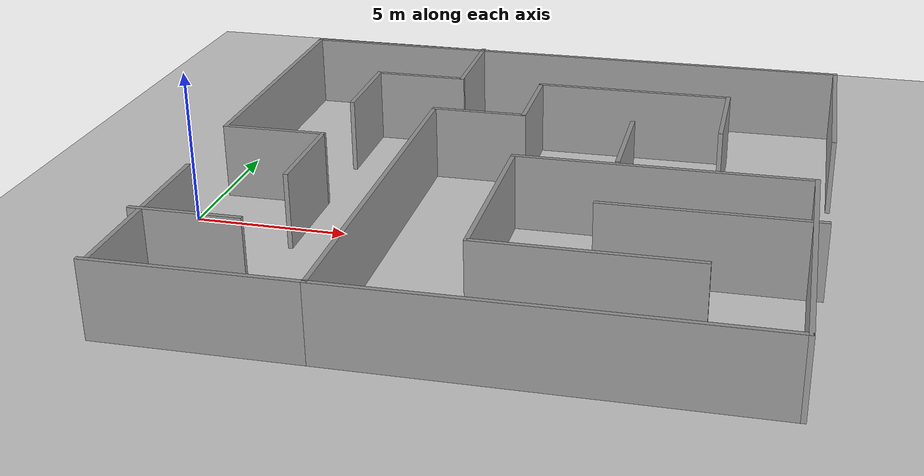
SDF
<sdf version="1.7">
 <world name="default">
  <light name="sun" type="directional">
   <pose>0 0 10 0 -0 0</pose>
   <diffuse>0.8 0.8 0.8 1</diffuse>
   <specular>0.2 0.2 0.2 1</specular>
   <attenuation>
    <range>1000</range>
    <constant>0.9</constant>
    <linear>0.01</linear>
    <quadratic>0.001</quadratic>
   </attenuation>
   <direction>-0.5 0.1 -0.9</direction>
   <spot><inner_angle>0</inner_angle><outer_angle>0</outer_angle><falloff>0</falloff></spot>
  </light>
  <model name="ground_plane">
   <static>1</static>
   <link name="link">
    <collision name="collision">
     <geometry><plane><normal>0 0 1</normal><size>100 100</size></plane></geometry>
     <surface>
      <contact><collide_bitmask>65535</collide_bitmask></contact>
      <friction><ode><mu>100</mu><mu2>50</mu2></ode></friction>
     </surface>
    </collision>
    <visual name="visual">
     <cast_shadows>0</cast_shadows>
     <geometry><plane><normal>0 0 1</normal><size>100 100</size></plane></geometry>
     <material>
      <script><uri>file://media/materials/scripts/gazebo.material</uri><name>Gazebo/Grey</name></script>
     </material>
    </visual>
   </link>
  </model>
  <gravity>0 0 -9.8</gravity>
  <magnetic_field>6e-06 2.3e-05 -4.2e-05</magnetic_field>
  <atmosphere type="adiabatic"/>
  <physics type="ode">
   <max_step_size>0.001</max_step_size>
   <real_time_factor>1</real_time_factor>
   <real_time_update_rate>1000</real_time_update_rate>
  </physics>
  <scene><ambient>0.4 0.4 0.4 1</ambient><background>0.7 0.7 0.7 1</background><shadows>1</shadows></scene>
  <audio><device>default</device></audio>
  <spherical_coordinates>
   <surface_model>EARTH_WGS84</surface_model>
   <latitude_deg>0</latitude_deg>
   <longitude_deg>0</longitude_deg>
   <elevation>0</elevation>
   <heading_deg>0</heading_deg>
  </spherical_coordinates>
  <model name="Untitled77777">
   <pose>9.98775 1.97662 0 0 0 -1.55982</pose>
   <link name="Wall_10">
    <collision name="Wall_10_Collision">
     <geometry><box><size>3.5 0.15 2.5</size></box></geometry>
     <pose>0 0 1.25 0 -0 0</pose>
    </collision>
    <visual name="Wall_10_Visual">
     <pose>0 0 1.25 0 -0 0</pose>
     <geometry><box><size>3.5 0.15 2.5</size></box></geometry>
     <material>
      <script><uri>file://media/materials/scripts/gazebo.material</uri><name>Gazebo/Grey</name></script>
      <ambient>1 1 1 1</ambient>
     </material>
     <meta><layer>0</layer></meta>
    </visual>
    <pose>-0.196952 -8.03087 0 0 -0 1.5708</pose>
   </link>
   <link name="Wall_11">
    <collision name="Wall_11_Collision">
     <geometry><box><size>3.5 0.15 2.5</size></box></geometry>
     <pose>0 0 1.25 0 -0 0</pose>
    </collision>
    <visual name="Wall_11_Visual">
     <pose>0 0 1.25 0 -0 0</pose>
     <geometry><box><size>3.5 0.15 2.5</size></box></geometry>
     <material>
      <script><uri>file://media/materials/scripts/gazebo.material</uri><name>Gazebo/Grey</name></script>
      <ambient>1 1 1 1</ambient>
     </material>
     <meta><layer>0</layer></meta>
    </visual>
    <pose>1.47805 -6.35587 0 0 -0 0</pose>
   </link>
   <link name="Wall_13">
    <collision name="Wall_13_Collision">
     <geometry><box><size>3.5 0.15 2.5</size></box></geometry>
     <pose>0 0 1.25 0 -0 0</pose>
    </collision>
    <visual name="Wall_13_Visual">
     <pose>0 0 1.25 0 -0 0</pose>
     <geometry><box><size>3.5 0.15 2.5</size></box></geometry>
     <material>
      <script><uri>file://media/materials/scripts/gazebo.material</uri><name>Gazebo/Grey</name></script>
      <ambient>1 1 1 1</ambient>
     </material>
     <meta><layer>0</layer></meta>
    </visual>
    <pose>-4.62195 6.28448 0 0 -0 3.14159</pose>
   </link>
   <link name="Wall_14">
    <collision name="Wall_14_Collision">
     <geometry><box><size>6.75 0.15 2.5</size></box></geometry>
     <pose>0 0 1.25 0 -0 0</pose>
    </collision>
    <visual name="Wall_14_Visual">
     <pose>0 0 1.25 0 -0 0</pose>
     <geometry><box><size>6.75 0.15 2.5</size></box></geometry>
     <material>
      <script><uri>file://media/materials/scripts/gazebo.material</uri><name>Gazebo/Grey</name></script>
      <ambient>1 1 1 1</ambient>
     </material>
     <meta><layer>0</layer></meta>
    </visual>
    <pose>-6.29695 2.98448 0 0 -0 -1.5708</pose>
   </link>
   <link name="Wall_15">
    <collision name="Wall_15_Collision">
     <geometry><box><size>3.25 0.15 2.5</size></box></geometry>
     <pose>0 0 1.25 0 -0 0</pose>
    </collision>
    <visual name="Wall_15_Visual">
     <pose>0 0 1.25 0 -0 0</pose>
     <geometry><box><size>3.25 0.15 2.5</size></box></geometry>
     <material>
      <script><uri>file://media/materials/scripts/gazebo.material</uri><name>Gazebo/Grey</name></script>
      <ambient>1 1 1 1</ambient>
     </material>
     <meta><layer>0</layer></meta>
    </visual>
    <pose>-4.74695 -0.315518 0 0 -0 0</pose>
   </link>
   <link name="Wall_16">
    <collision name="Wall_16_Collision">
     <geometry><box><size>3.25 0.15 2.5</size></box></geometry>
     <pose>0 0 1.25 0 -0 0</pose>
    </collision>
    <visual name="Wall_16_Visual">
     <pose>0 0 1.25 0 -0 0</pose>
     <geometry><box><size>3.25 0.15 2.5</size></box></geometry>
     <material>
      <script><uri>file://media/materials/scripts/gazebo.material</uri><name>Gazebo/Grey</name></script>
      <ambient>1 1 1 1</ambient>
     </material>
     <meta><layer>0</layer></meta>
    </visual>
    <pose>-3.19695 -1.86552 0 0 -0 -1.5708</pose>
   </link>
   <link name="Wall_17">
    <collision name="Wall_17_Collision">
     <geometry><box><size>13 0.15 2.5</size></box></geometry>
     <pose>0 0 1.25 0 -0 0</pose>
    </collision>
    <visual name="Wall_17_Visual">
     <pose>0 0 1.25 0 -0 0</pose>
     <geometry><box><size>13 0.15 2.5</size></box></geometry>
     <material>
      <script><uri>file://media/materials/scripts/gazebo.material</uri><name>Gazebo/Grey</name></script>
      <ambient>1 1 1 1</ambient>
     </material>
     <meta><layer>0</layer></meta>
    </visual>
    <pose>3.22805 -3.41552 0 0 -0 0</pose>
   </link>
   <link name="Wall_18">
    <collision name="Wall_18_Collision">
     <geometry><box><size>13 0.15 2.5</size></box></geometry>
     <pose>0 0 1.25 0 -0 0</pose>
    </collision>
    <visual name="Wall_18_Visual">
     <pose>0 0 1.25 0 -0 0</pose>
     <geometry><box><size>13 0.15 2.5</size></box></geometry>
     <material>
      <script><uri>file://media/materials/scripts/gazebo.material</uri><name>Gazebo/Grey</name></script>
      <ambient>1 1 1 1</ambient>
     </material>
     <meta><layer>0</layer></meta>
    </visual>
    <pose>9.65305 3.00948 0 0 -0 1.5708</pose>
   </link>
   <link name="Wall_19">
    <collision name="Wall_19_Collision">
     <geometry><box><size>9.5 0.15 2.5</size></box></geometry>
     <pose>0 0 1.25 0 -0 0</pose>
    </collision>
    <visual name="Wall_19_Visual">
     <pose>0 0 1.25 0 -0 0</pose>
     <geometry><box><size>9.5 0.15 2.5</size></box></geometry>
     <material>
      <script><uri>file://media/materials/scripts/gazebo.material</uri><name>Gazebo/Grey</name></script>
      <ambient>1 1 1 1</ambient>
     </material>
     <meta><layer>0</layer></meta>
    </visual>
    <pose>4.97805 9.43448 0 0 -0 3.14159</pose>
   </link>
   <link name="Wall_20">
    <collision name="Wall_20_Collision">
     <geometry><box><size>9.5 0.15 2.5</size></box></geometry>
     <pose>0 0 1.25 0 -0 0</pose>
    </collision>
    <visual name="Wall_20_Visual">
     <pose>0 0 1.25 0 -0 0</pose>
     <geometry><box><size>9.5 0.15 2.5</size></box></geometry>
     <material>
      <script><uri>file://media/materials/scripts/gazebo.material</uri><name>Gazebo/Grey</name></script>
      <ambient>1 1 1 1</ambient>
     </material>
     <meta><layer>0</layer></meta>
    </visual>
    <pose>0.303049 4.75948 0 0 -0 -1.5708</pose>
   </link>
   <link name="Wall_21">
    <collision name="Wall_21_Collision">
     <geometry><box><size>6.25 0.15 2.5</size></box></geometry>
     <pose>0 0 1.25 0 -0 0</pose>
    </collision>
    <visual name="Wall_21_Visual">
     <pose>0 0 1.25 0 -0 0</pose>
     <geometry><box><size>6.25 0.15 2.5</size></box></geometry>
     <material>
      <script><uri>file://media/materials/scripts/gazebo.material</uri><name>Gazebo/Grey</name></script>
      <ambient>1 1 1 1</ambient>
     </material>
     <meta><layer>0</layer></meta>
    </visual>
    <pose>3.35305 0.084482 0 0 -0 0</pose>
   </link>
   <link name="Wall_22">
    <collision name="Wall_22_Collision">
     <geometry><box><size>6.75 0.15 2.5</size></box></geometry>
     <pose>0 0 1.25 0 -0 0</pose>
    </collision>
    <visual name="Wall_22_Visual">
     <pose>0 0 1.25 0 -0 0</pose>
     <geometry><box><size>6.75 0.15 2.5</size></box></geometry>
     <material>
      <script><uri>file://media/materials/scripts/gazebo.material</uri><name>Gazebo/Grey</name></script>
      <ambient>1 1 1 1</ambient>
     </material>
     <meta><layer>0</layer></meta>
    </visual>
    <pose>6.40305 3.38448 0 0 -0 1.5708</pose>
   </link>
   <link name="Wall_24">
    <collision name="Wall_24_Collision">
     <geometry><box><size>6.75 0.15 2.5</size></box></geometry>
     <pose>0 0 1.25 0 -0 0</pose>
    </collision>
    <visual name="Wall_24_Visual">
     <pose>0 0 1.25 0 -0 0</pose>
     <geometry><box><size>6.75 0.15 2.5</size></box></geometry>
     <material>
      <script><uri>file://media/materials/scripts/gazebo.material</uri><name>Gazebo/Grey</name></script>
      <ambient>1 1 1 1</ambient>
     </material>
     <meta><layer>0</layer></meta>
    </visual>
    <pose>3.23228 6.47177 0 0 -0 -1.5708</pose>
   </link>
   <link name="Wall_26">
    <collision name="Wall_26_Collision">
     <geometry><box><size>3.5 0.15 2.5</size></box></geometry>
     <pose>0 0 1.25 0 -0 0</pose>
    </collision>
    <visual name="Wall_26_Visual">
     <pose>0 0 1.25 0 -0 0</pose>
     <geometry><box><size>3.5 0.15 2.5</size></box></geometry>
     <material>
      <script><uri>file://media/materials/scripts/gazebo.material</uri><name>Gazebo/Grey</name></script>
      <ambient>1 1 1 1</ambient>
     </material>
     <meta><layer>0</layer></meta>
    </visual>
    <pose>-1.62411 3.34782 0 0 -0 3.14159</pose>
   </link>
   <link name="Wall_30">
    <collision name="Wall_30_Collision">
     <geometry><box><size>3.5 0.15 2.5</size></box></geometry>
     <pose>0 0 1.25 0 -0 0</pose>
    </collision>
    <visual name="Wall_30_Visual">
     <pose>0 0 1.25 0 -0 0</pose>
     <geometry><box><size>3.5 0.15 2.5</size></box></geometry>
     <material>
      <script><uri>file://media/materials/scripts/gazebo.material</uri><name>Gazebo/Grey</name></script>
      <ambient>1 1 1 1</ambient>
     </material>
     <meta><layer>0</layer></meta>
    </visual>
    <pose>-7.97805 -3.22885 0 0 -0 0</pose>
   </link>
   <link name="Wall_31">
    <collision name="Wall_31_Collision">
     <geometry><box><size>3.25 0.15 2.5</size></box></geometry>
     <pose>0 0 1.25 0 -0 0</pose>
    </collision>
    <visual name="Wall_31_Visual">
     <pose>0 0 1.25 0 -0 0</pose>
     <geometry><box><size>3.25 0.15 2.5</size></box></geometry>
     <material>
      <script><uri>file://media/materials/scripts/gazebo.material</uri><name>Gazebo/Grey</name></script>
      <ambient>1 1 1 1</ambient>
     </material>
     <meta><layer>0</layer></meta>
    </visual>
    <pose>-6.30305 -4.77884 0 0 -0 -1.5708</pose>
   </link>
   <link name="Wall_32">
    <collision name="Wall_32_Collision">
     <geometry><box><size>3.25 0.15 2.5</size></box></geometry>
     <pose>0 0 1.25 0 -0 0</pose>
    </collision>
    <visual name="Wall_32_Visual">
     <pose>0 0 1.25 0 -0 0</pose>
     <geometry><box><size>3.25 0.15 2.5</size></box></geometry>
     <material>
      <script><uri>file://media/materials/scripts/gazebo.material</uri><name>Gazebo/Grey</name></script>
      <ambient>1 1 1 1</ambient>
     </material>
     <meta><layer>0</layer></meta>
    </visual>
    <pose>-4.75305 -6.32885 0 0 -0 0</pose>
   </link>
   <link name="Wall_34">
    <collision name="Wall_34_Collision">
     <geometry><box><size>3.5 0.15 2.5</size></box></geometry>
     <pose>0 0 1.25 0 -0 0</pose>
    </collision>
    <visual name="Wall_34_Visual">
     <pose>0 0 1.25 0 -0 0</pose>
     <geometry><box><size>3.5 0.15 2.5</size></box></geometry>
     <material>
      <script><uri>file://media/materials/scripts/gazebo.material</uri><name>Gazebo/Grey</name></script>
      <ambient>1 1 1 1</ambient>
     </material>
     <meta><layer>0</layer></meta>
    </visual>
    <pose>6.36153 -8.21913 0 0 -0 -1.5708</pose>
   </link>
   <link name="Wall_36">
    <collision name="Wall_36_Collision">
     <geometry><box><size>6.5 0.15 2.5</size></box></geometry>
     <pose>0 0 1.25 0 -0 0</pose>
    </collision>
    <visual name="Wall_36_Visual">
     <pose>0 0 1.25 0 -0 0</pose>
     <geometry><box><size>6.5 0.15 2.5</size></box></geometry>
     <material>
      <script><uri>file://media/materials/scripts/gazebo.material</uri><name>Gazebo/Grey</name></script>
      <ambient>1 1 1 1</ambient>
     </material>
     <meta><layer>0</layer></meta>
    </visual>
    <pose>6.33177 -9.56181 0 0 -0 0</pose>
   </link>
   <link name="Wall_40">
    <collision name="Wall_40_Collision">
     <geometry><box><size>6.5 0.15 2.5</size></box></geometry>
     <pose>0 0 1.25 0 -0 0</pose>
    </collision>
    <visual name="Wall_40_Visual">
     <pose>0 0 1.25 0 -0 0</pose>
     <geometry><box><size>6.5 0.15 2.5</size></box></geometry>
     <material>
      <script><uri>file://media/materials/scripts/gazebo.material</uri><name>Gazebo/Grey</name></script>
      <ambient>1 1 1 1</ambient>
     </material>
     <meta><layer>0</layer></meta>
    </visual>
    <pose>9.65305 -6.59052 0 0 -0 -1.5708</pose>
   </link>
   <link name="Wall_7">
    <collision name="Wall_7_Collision">
     <geometry><box><size>6.75 0.15 2.5</size></box></geometry>
     <pose>0 0 1.25 0 -0 0</pose>
    </collision>
    <visual name="Wall_7_Visual">
     <pose>0 0 1.25 0 -0 0</pose>
     <geometry><box><size>6.75 0.15 2.5</size></box></geometry>
     <material>
      <script><uri>file://media/materials/scripts/gazebo.material</uri><name>Gazebo/Grey</name></script>
      <ambient>1 1 1 1</ambient>
     </material>
     <meta><layer>0</layer></meta>
    </visual>
    <pose>-6.24695 9.89413 0 0 -0 3.14159</pose>
   </link>
   <link name="Wall_8">
    <collision name="Wall_8_Collision">
     <geometry><box><size>19.75 0.15 2.5</size></box></geometry>
     <pose>0 0 1.25 0 -0 0</pose>
    </collision>
    <visual name="Wall_8_Visual">
     <pose>0 0 1.25 0 -0 0</pose>
     <geometry><box><size>19.75 0.15 2.5</size></box></geometry>
     <material>
      <script><uri>file://media/materials/scripts/gazebo.material</uri><name>Gazebo/Grey</name></script>
      <ambient>1 1 1 1</ambient>
     </material>
     <meta><layer>0</layer></meta>
    </visual>
    <pose>-9.54695 0.094129 0 0 -0 -1.5708</pose>
   </link>
   <link name="Wall_9">
    <collision name="Wall_9_Collision">
     <geometry><box><size>9.5 0.15 2.5</size></box></geometry>
     <pose>0 0 1.25 0 -0 0</pose>
    </collision>
    <visual name="Wall_9_Visual">
     <pose>0 0 1.25 0 -0 0</pose>
     <geometry><box><size>9.5 0.15 2.5</size></box></geometry>
     <material>
      <script><uri>file://media/materials/scripts/gazebo.material</uri><name>Gazebo/Grey</name></script>
      <ambient>1 1 1 1</ambient>
     </material>
     <meta><layer>0</layer></meta>
    </visual>
    <pose>-4.87195 -9.70587 0 0 -0 0</pose>
   </link>
   <static>1</static>
  </model>
 </world>
</sdf>
